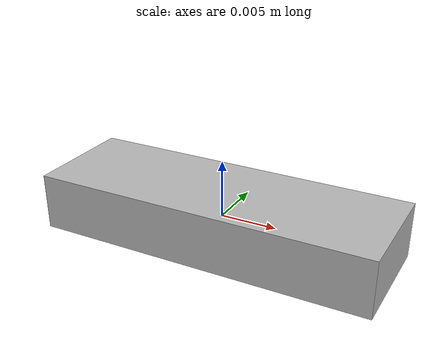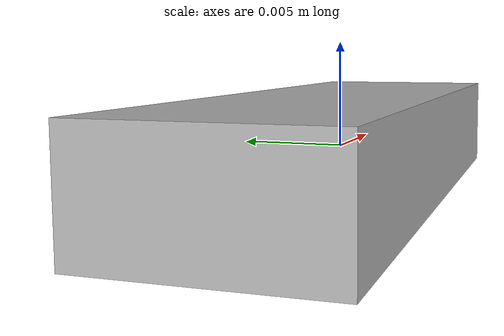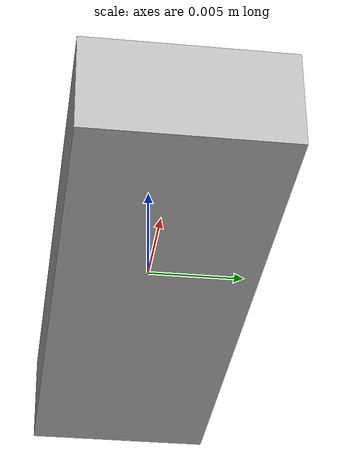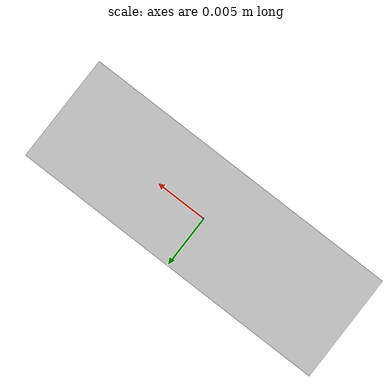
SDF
<?xml version="1.0" ?>
<sdf version="1.5">

  <model name="agh_opflow">

    <link name="link">

      <pose>0 0 0 -1.5707963259 1.5707963259 0</pose>

      <inertial>
        <mass>0.00001</mass>
        <inertia>
          <ixx>4.166666666666667e-09</ixx>
          <iyy>5.208333333333334e-09</iyy>
          <izz>3.854166666666666e-09</izz>
        </inertia>
      </inertial>

      <visual name="visual">
        <geometry>
          <box>
            <size>0.005 0.03 0.01</size>
          </box>
        </geometry>
      </visual>

      <collision name="collision">
        <geometry>
          <box>
            <size>0.005 0.03 0.01</size>
          </box>
        </geometry>
      </collision>

      <sensor name="px4flow" type="imu">
        <pose>0 0 0 0 -1.5707963259 3.1415926518</pose>
        <always_on>1</always_on>
        <update_rate>150</update_rate>
      </sensor>

      <!-- Sonar: HRLV EZ4-->

      <!--752x480 MT9V034 image sensor, only 64x64 pixels used-->
      <sensor name="px4flow" type="camera">
        <always_on>true</always_on>
        <update_rate>100</update_rate>
        <visualize>true</visualize>
        <topic>/px4flow</topic>
        <camera>
          <horizontal_fov>0.25</horizontal_fov>
          <lens>
            <type>gnomonical</type>
            <scale_to_hfov>false</scale_to_hfov>
          </lens>
          <image>
            <width>64</width>
            <height>64</height>
            <format>L8</format>
          </image>
          <clip>
            <near>0.1</near>
            <far>100</far>
          </clip>
          <noise>
            <type>gaussian</type>
            <mean>0.0</mean>
            <stddev>0.001</stddev>
          </noise>
        </camera>
        <plugin name="opticalflow_plugin" filename="libgazebo_opticalflow_plugin.so">
            <robotNamespace></robotNamespace>
            <outputRate>20</outputRate>
            <hasGyro>true</hasGyro>
            <gyroTopic>/px4flow/imu</gyroTopic>
        </plugin>
      </sensor>
    </link>
  </model>

</sdf>

<!-- vim: set et ft=xml fenc=utf-8 ff=unix sts=0 sw=2 ts=2 : -->
